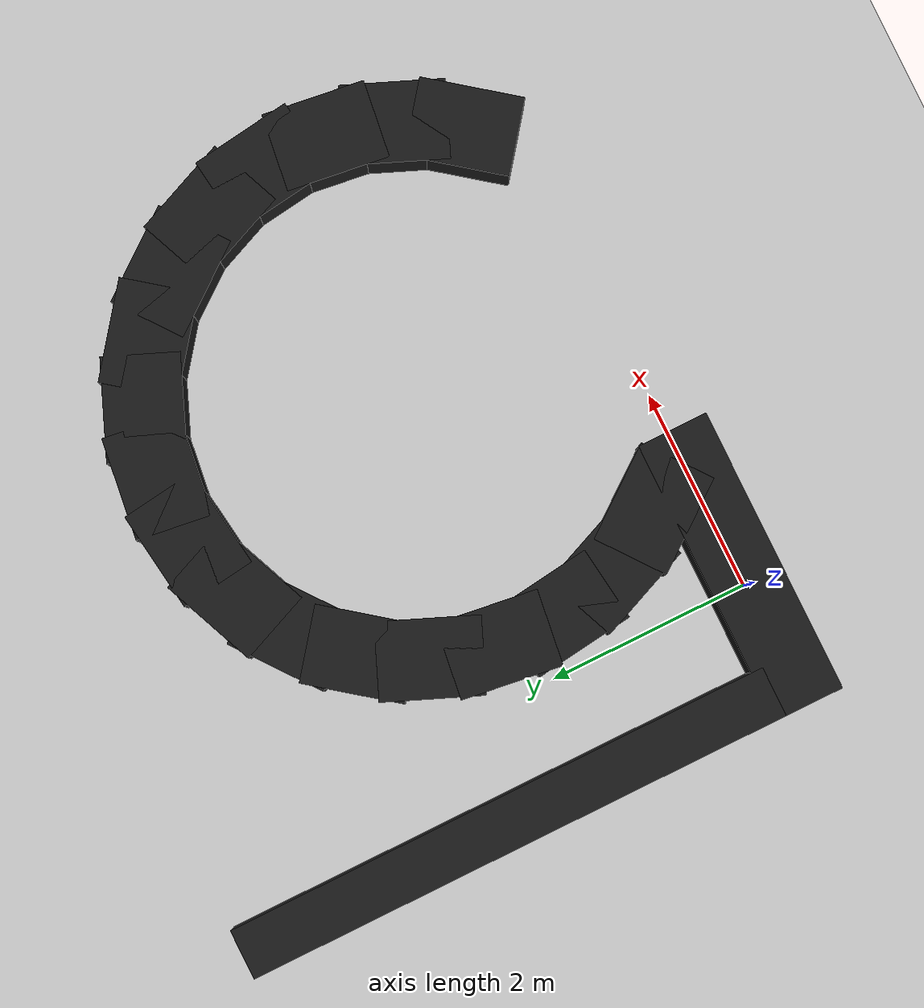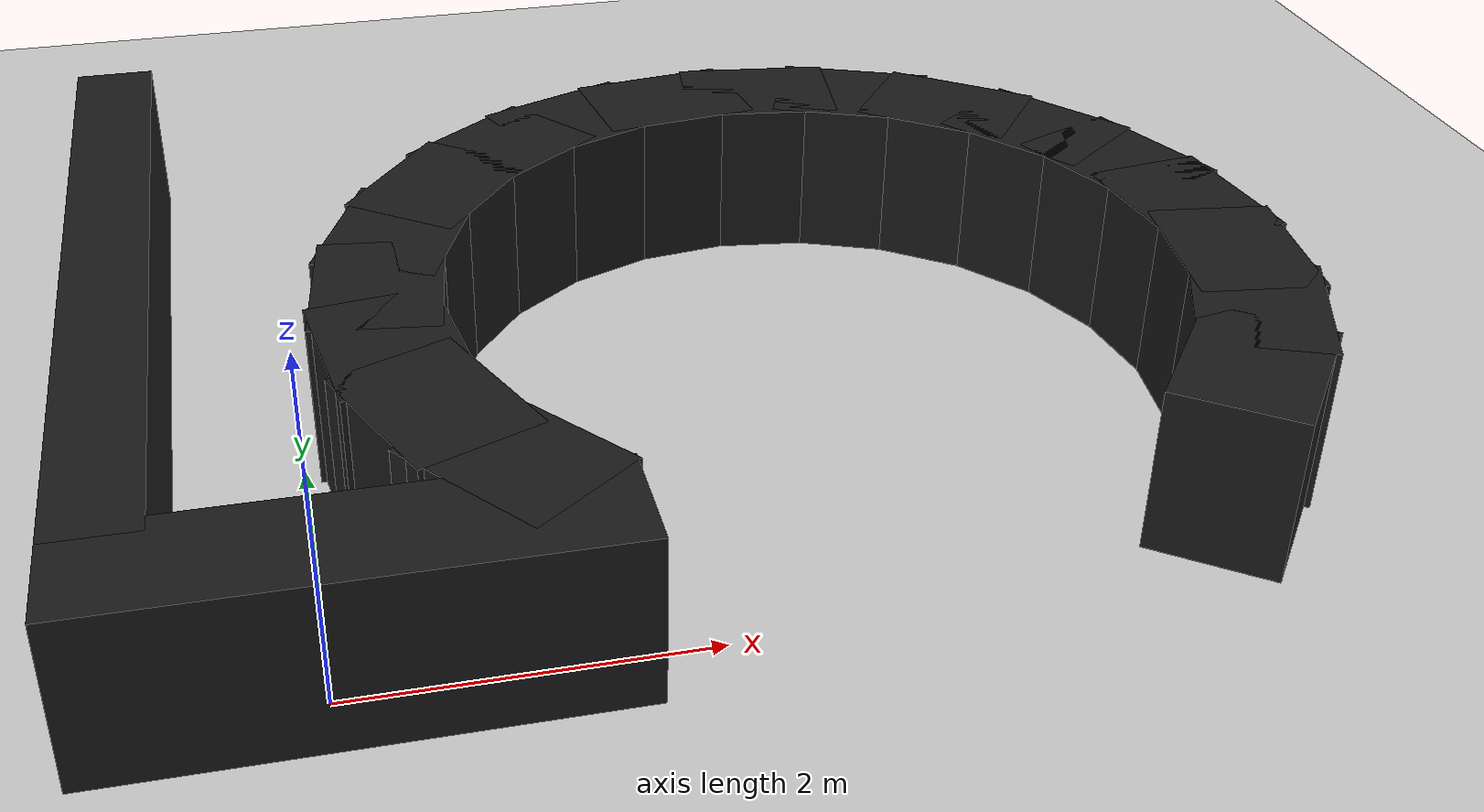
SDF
<?xml version="1.0" ?>
<sdf version="1.8">
  <world name="assignment1">
    <physics name="1ms" type="ignored">
      <max_step_size>0.001</max_step_size>
      <real_time_factor>1.0</real_time_factor>
    </physics>
    <plugin filename="gz-sim-physics-system" name="gz::sim::systems::Physics"/>
    <plugin filename="gz-sim-user-commands-system" name="gz::sim::systems::UserCommands"/>
    <plugin filename="gz-sim-scene-broadcaster-system" name="gz::sim::systems::SceneBroadcaster"/>
    <plugin filename="gz-sim-sensors-system" name="gz::sim::systems::Sensors">
      <render_engine>ogre2</render_engine>
    </plugin>

    <light type="directional" name="sun">
      <cast_shadows>true</cast_shadows>
      <pose>0 0 10 0 0 0</pose>
      <diffuse>0.8 0.8 0.8 1</diffuse>
      <specular>0.2 0.2 0.2 1</specular>
      <direction>-0.5 0.1 -0.9</direction>
    </light>

    <model name="ground_plane">
      <static>true</static>
      <link name="link">
        <collision name="collision">
          <geometry><plane><normal>0 0 1</normal><size>100 100</size></plane></geometry>
        </collision>
        <visual name="visual">
          <geometry><plane><normal>0 0 1</normal><size>100 100</size></plane></geometry>
          <material>
            <ambient>0.8 0.8 0.8 1</ambient>
            <diffuse>0.8 0.8 0.8 1</diffuse>
          </material>
        </visual>
      </link>
    </model>

    <!-- ==================== L-shaped wall ==================== -->
    <model name="l_shape">
      <static>true</static>
      <!-- Vertical arm (facing north / upward) -->
      <link name="l_vertical">
        <pose>-1.00 2.982 0.5 0 0 0</pose>
        <collision name="c1"><geometry><box><size>0.5 5.5 1</size></box></geometry></collision>
        <visual name="v1"><geometry><box><size>0.5 5.5 1</size></box></geometry><material><ambient>0.1 0.1 0.1 1</ambient></material></visual>
      </link>
      <!-- Horizontal arm (bottom, extending right to circle gap left edge) -->
      <link name="l_horizontal">
        <pose> 0.175 0 0.5 0 0 0</pose>
        <collision name="c2"><geometry><box><size>2.85 0.7 1</size></box></geometry></collision>
        <visual name="v2"><geometry><box><size>2.85 0.7 1</size></box></geometry><material><ambient>0.1 0.1 0.1 1</ambient></material></visual>
      </link>
    </model>

    <!-- ==================== Open circle (270 arc, gap at bottom) ==================== -->
    <!-- Circle center: (3, 2), R=2.5. Gap from -135 to -45 deg (bottom). -->
    <!-- 18 segments at 15-deg steps from -37.5 deg to 217.5 deg -->
    <model name="o_ring">
      <static>true</static>
      <link name="seg_1">
        <pose>4.983 0.478 0.5 0 0 -0.654</pose>
        <collision name="c1"><geometry><box><size>0.751 1.000 1</size></box></geometry></collision>
        <visual name="v1"><geometry><box><size>0.751 1.000 1</size></box></geometry><material><ambient>0.1 0.1 0.1 1</ambient></material></visual>
      </link>
      <link name="seg_2">
        <pose>5.310 1.043 0.5 0 0 -0.393</pose>
        <collision name="c2"><geometry><box><size>0.751 1.000 1</size></box></geometry></collision>
        <visual name="v2"><geometry><box><size>0.751 1.000 1</size></box></geometry><material><ambient>0.1 0.1 0.1 1</ambient></material></visual>
      </link>
      <link name="seg_3">
        <pose>5.479 1.674 0.5 0 0 -0.131</pose>
        <collision name="c3"><geometry><box><size>0.751 1.000 1</size></box></geometry></collision>
        <visual name="v3"><geometry><box><size>0.751 1.000 1</size></box></geometry><material><ambient>0.1 0.1 0.1 1</ambient></material></visual>
      </link>
      <link name="seg_4">
        <pose>5.479 2.326 0.5 0 0 0.131</pose>
        <collision name="c4"><geometry><box><size>0.751 1.000 1</size></box></geometry></collision>
        <visual name="v4"><geometry><box><size>0.751 1.000 1</size></box></geometry><material><ambient>0.1 0.1 0.1 1</ambient></material></visual>
      </link>
      <link name="seg_5">
        <pose>5.310 2.957 0.5 0 0 0.393</pose>
        <collision name="c5"><geometry><box><size>0.751 1.000 1</size></box></geometry></collision>
        <visual name="v5"><geometry><box><size>0.751 1.000 1</size></box></geometry><material><ambient>0.1 0.1 0.1 1</ambient></material></visual>
      </link>
      <link name="seg_6">
        <pose>4.983 3.522 0.5 0 0 0.654</pose>
        <collision name="c6"><geometry><box><size>0.751 1.000 1</size></box></geometry></collision>
        <visual name="v6"><geometry><box><size>0.751 1.000 1</size></box></geometry><material><ambient>0.1 0.1 0.1 1</ambient></material></visual>
      </link>
      <link name="seg_7">
        <pose>4.522 3.983 0.5 0 0 0.916</pose>
        <collision name="c7"><geometry><box><size>0.751 1.000 1</size></box></geometry></collision>
        <visual name="v7"><geometry><box><size>0.751 1.000 1</size></box></geometry><material><ambient>0.1 0.1 0.1 1</ambient></material></visual>
      </link>
      <link name="seg_8">
        <pose>3.957 4.310 0.5 0 0 1.178</pose>
        <collision name="c8"><geometry><box><size>0.751 1.000 1</size></box></geometry></collision>
        <visual name="v8"><geometry><box><size>0.751 1.000 1</size></box></geometry><material><ambient>0.1 0.1 0.1 1</ambient></material></visual>
      </link>
      <link name="seg_9">
        <pose>3.326 4.479 0.5 0 0 1.440</pose>
        <collision name="c9"><geometry><box><size>0.751 1.000 1</size></box></geometry></collision>
        <visual name="v9"><geometry><box><size>0.751 1.000 1</size></box></geometry><material><ambient>0.1 0.1 0.1 1</ambient></material></visual>
      </link>
      <link name="seg_10">
        <pose>2.674 4.479 0.5 0 0 1.702</pose>
        <collision name="c10"><geometry><box><size>0.751 1.000 1</size></box></geometry></collision>
        <visual name="v10"><geometry><box><size>0.751 1.000 1</size></box></geometry><material><ambient>0.1 0.1 0.1 1</ambient></material></visual>
      </link>
      <link name="seg_11">
        <pose>2.043 4.310 0.5 0 0 1.963</pose>
        <collision name="c11"><geometry><box><size>0.751 1.000 1</size></box></geometry></collision>
        <visual name="v11"><geometry><box><size>0.751 1.000 1</size></box></geometry><material><ambient>0.1 0.1 0.1 1</ambient></material></visual>
      </link>
      <link name="seg_12">
        <pose>1.478 3.983 0.5 0 0 2.225</pose>
        <collision name="c12"><geometry><box><size>0.751 1.000 1</size></box></geometry></collision>
        <visual name="v12"><geometry><box><size>0.751 1.000 1</size></box></geometry><material><ambient>0.1 0.1 0.1 1</ambient></material></visual>
      </link>
      <link name="seg_13">
        <pose>1.017 3.522 0.5 0 0 2.487</pose>
        <collision name="c13"><geometry><box><size>0.751 1.000 1</size></box></geometry></collision>
        <visual name="v13"><geometry><box><size>0.751 1.000 1</size></box></geometry><material><ambient>0.1 0.1 0.1 1</ambient></material></visual>
      </link>
      <link name="seg_14">
        <pose>0.690 2.957 0.5 0 0 2.749</pose>
        <collision name="c14"><geometry><box><size>0.751 1.000 1</size></box></geometry></collision>
        <visual name="v14"><geometry><box><size>0.751 1.000 1</size></box></geometry><material><ambient>0.1 0.1 0.1 1</ambient></material></visual>
      </link>
      <link name="seg_15">
        <pose>0.521 2.326 0.5 0 0 3.011</pose>
        <collision name="c15"><geometry><box><size>0.751 1.000 1</size></box></geometry></collision>
        <visual name="v15"><geometry><box><size>0.751 1.000 1</size></box></geometry><material><ambient>0.1 0.1 0.1 1</ambient></material></visual>
      </link>
      <link name="seg_16">
        <pose>0.521 1.674 0.5 0 0 3.272</pose>
        <collision name="c16"><geometry><box><size>0.751 1.000 1</size></box></geometry></collision>
        <visual name="v16"><geometry><box><size>0.751 1.000 1</size></box></geometry><material><ambient>0.1 0.1 0.1 1</ambient></material></visual>
      </link>
      <link name="seg_17">
        <pose>0.690 1.043 0.5 0 0 3.534</pose>
        <collision name="c17"><geometry><box><size>0.751 1.000 1</size></box></geometry></collision>
        <visual name="v17"><geometry><box><size>0.751 1.000 1</size></box></geometry><material><ambient>0.1 0.1 0.1 1</ambient></material></visual>
      </link>
      <link name="seg_18">
        <pose>1.017 0.478 0.5 0 0 3.796</pose>
        <collision name="c18"><geometry><box><size>0.751 1.000 1</size></box></geometry></collision>
        <visual name="v18"><geometry><box><size>0.751 1.000 1</size></box></geometry><material><ambient>0.1 0.1 0.1 1</ambient></material></visual>
      </link>
    </model>

  </world>
</sdf>
